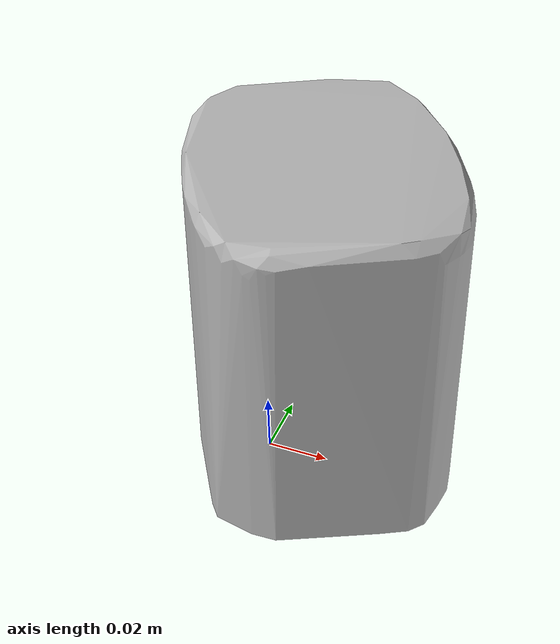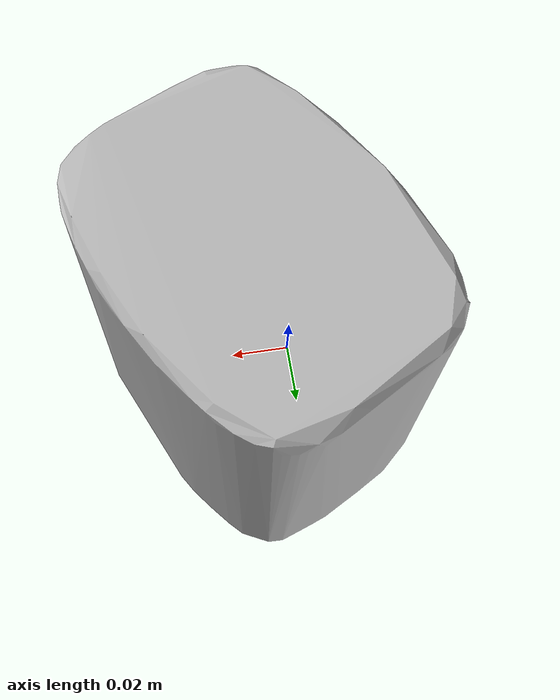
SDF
<?xml version='1.0'?>
<sdf version="1.4">
  <model name="hersheys_cocoa">
    <static>false</static>
    <link name="link">
      <inertial>
        <pose>0.01336991814074596 0.013290846981284824 0.055553619320371624 -3.1025841927829014 -0.013530094529750385 -2.670477465743751</pose>
        <mass>0.07267917010725597</mass>
        <inertia>
          <ixx>0.00011682486797229689</ixx>
          <ixy>-3.3140038168204604e-21</ixy>
          <ixz>3.2045515955543214e-23</ixz>
          <iyy>9.294218136593353e-05</iyy>
          <iyz>-1.1249855198269436e-22</iyz>
          <izz>8.787078574219448e-05</izz>
        </inertia>
      </inertial>
      <collision name="collision">
        <geometry>
          <mesh>
            <!-- Use a downsampled mesh for collisions -->
            <uri>model:///hersheys_cocoa/hersheys_cocoa_250_collision.obj</uri>
	        </mesh>
        </geometry>
        <surface>
      </surface>
      </collision>
      <visual name="visual">
        <geometry>
          <mesh>
            <uri>model:///hersheys_cocoa/optimized_tsdf_texture_mapped_mesh.obj</uri>
	        </mesh>
        </geometry>
        <material>
          <script>
            <uri>model:///hersheys_cocoa/hersheys_cocoa.material</uri>
            <name>hersheys_cocoa</name>
          </script>
        </material>
      </visual>
    </link>
  </model>
</sdf>
